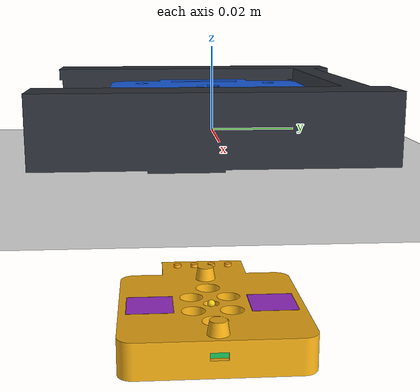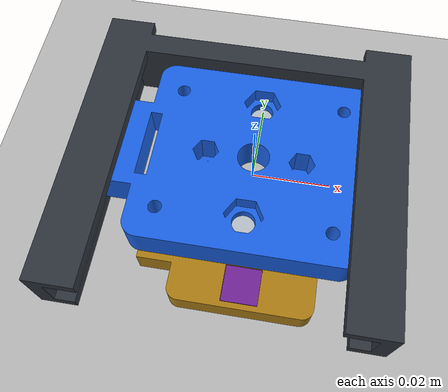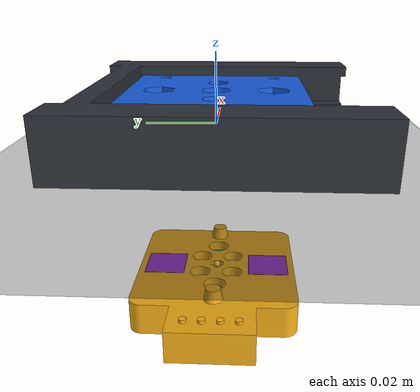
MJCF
<mujoco model="SO101 powered magnetic quick change with positive lock">
  <compiler angle="degree" meshdir="../exports"/>
  <option timestep="0.002" integrator="implicitfast" gravity="0 0 -9.81"/>
  <statistic center="0 -0.02 0" extent="0.12"/>

  <asset>
    <mesh name="robot_plate_mesh" file="so101_robot_plate.stl" scale="0.001 0.001 0.001"/>
    <mesh name="tool_plate_mesh" file="so101_tool_plate.stl" scale="0.001 0.001 0.001"/>
    <mesh name="tool_dock_mesh" file="so101_passive_tool_dock.stl" scale="0.001 0.001 0.001"/>
    <material name="robot_yellow" rgba="0.95 0.68 0.08 1"/>
    <material name="tool_blue" rgba="0.10 0.38 0.90 1"/>
    <material name="dock_dark" rgba="0.18 0.20 0.23 1"/>
    <material name="magnet" rgba="0.62 0.18 0.82 1" metallic="0.35" roughness="0.25"/>
    <material name="steel" rgba="0.72 0.75 0.78 1" metallic="0.7" roughness="0.25"/>
    <material name="lock_green" rgba="0.10 0.75 0.34 0.9"/>
    <material name="contact_gold" rgba="1.0 0.66 0.08 1" metallic="0.65" roughness="0.2"/>
  </asset>

  <worldbody>
    <light pos="0.1 -0.2 0.35" dir="-0.2 0.3 -1" directional="true"/>
    <camera name="overview" pos="0.15 -0.22 0.14" xyaxes="0.83 0.56 0 -0.28 0.42 0.86"/>
    <geom name="floor" type="plane" pos="0 0 -0.010" size="0.3 0.3 0.01" rgba="0.08 0.09 0.11 1"/>
    <geom name="dock_visual" type="mesh" mesh="tool_dock_mesh" material="dock_dark"
          contype="0" conaffinity="0"/>

    <body name="robot_plate" mocap="true" pos="0 0 -0.055">
      <geom type="mesh" mesh="robot_plate_mesh" material="robot_yellow" contype="0" conaffinity="0"/>
      <geom type="box" pos="0 -0.016 0.0075" size="0.006 0.006 0.002" material="magnet" contype="0" conaffinity="0"/>
      <geom type="box" pos="0 0.016 0.0075" size="0.006 0.006 0.002" material="magnet" contype="0" conaffinity="0"/>
      <geom type="box" pos="0.003 0 0.0055" size="0.020 0.0024 0.0008" material="lock_green" contype="0" conaffinity="0"/>
      <geom type="cylinder" pos="-0.031 -0.0075 0.0097" size="0.00105 0.0007" material="contact_gold" contype="0" conaffinity="0"/>
      <geom type="cylinder" pos="-0.031 -0.0025 0.0097" size="0.00105 0.0007" material="contact_gold" contype="0" conaffinity="0"/>
      <geom type="cylinder" pos="-0.031 0.0025 0.0097" size="0.00105 0.0007" material="contact_gold" contype="0" conaffinity="0"/>
      <geom type="cylinder" pos="-0.031 0.0075 0.0097" size="0.00105 0.0007" material="contact_gold" contype="0" conaffinity="0"/>
      <site name="robot_mating_face" pos="0 0 0.0095" size="0.001" rgba="1 0.8 0.1 1"/>
    </body>

    <body name="tool_plate" pos="0 0 0">
      <freejoint name="tool_plate_free"/>
      <inertial pos="0 0 0.00475" mass="0.050" diaginertia="0.00003 0.00003 0.00005"/>
      <geom type="mesh" mesh="tool_plate_mesh" material="tool_blue" contype="0" conaffinity="0"/>
      <geom type="box" pos="0 -0.016 0.0015" size="0.006 0.006 0.0015" material="steel" contype="0" conaffinity="0"/>
      <geom type="box" pos="0 0.016 0.0015" size="0.006 0.006 0.0015" material="steel" contype="0" conaffinity="0"/>
      <geom name="tool_collision" type="box" pos="-0.002 0 0.00475" size="0.034 0.025 0.00475"
            rgba="0 0 0 0" mass="0"/>
      <site name="tool_mating_face" pos="0 0 0" size="0.001" rgba="0.1 0.7 1 1"/>
    </body>
  </worldbody>

  <equality>
    <weld name="tool_in_dock" body1="tool_plate" active="true" solref="0.004 1"/>
    <weld name="magnetic_attach" body1="robot_plate" body2="tool_plate" active="false"
          solref="0.004 1" solimp="0.95 0.99 0.001"/>
    <weld name="positive_lock" body1="robot_plate" body2="tool_plate" active="false"
          solref="0.003 1" solimp="0.98 0.995 0.001"/>
  </equality>
</mujoco>
